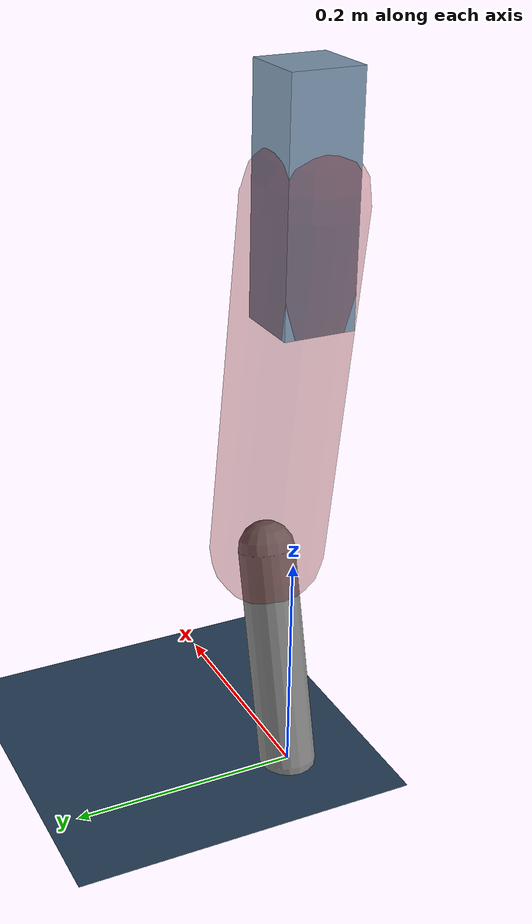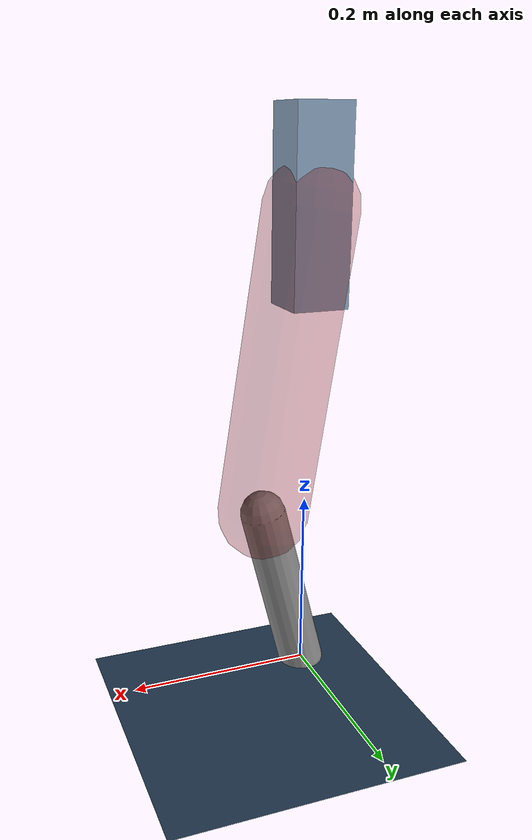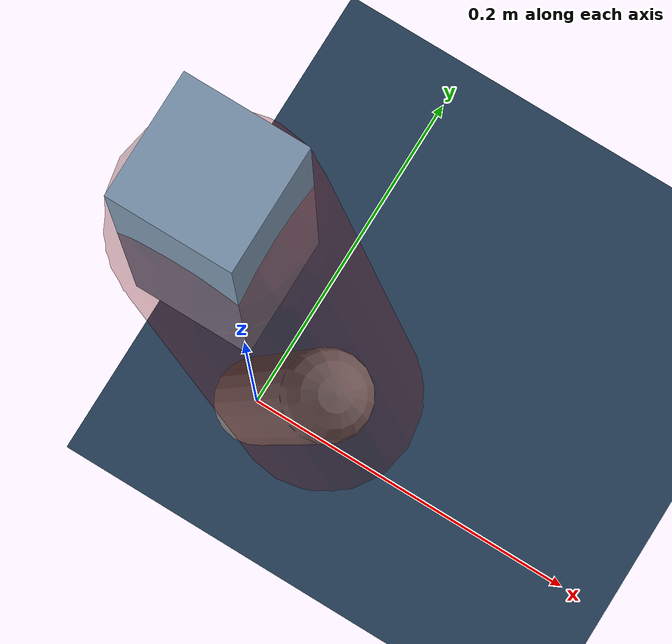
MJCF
<mujoco model="Hopper2D">
	<compiler inertiafromgeom="true" angle="radian" />
	<option timestep="0.001" integrator="implicit" cone="elliptic" solver="Newton" tolerance="1e-10" />

	<default>
		<geom contype="1" conaffinity="1" condim="3" friction="2 0.005 0.0001" solref="0.005 1" />
		<joint limited="true" damping="0.1" />
	</default>

	<asset>
		<texture name="skybox" type="skybox" builtin="gradient" rgb1=".4 .6 .8" rgb2="0 0 0" width="800" height="800" />
		<texture name="grid" type="2d" builtin="checker" rgb1=".1 .2 .3" rgb2=".2 .3 .4" width="300" height="300" mark="edge" markrgb=".2 .3 .4" />
		<material name="ground" texture="grid" texrepeat="1 1" texuniform="true" reflectance="0.1" />
		<material name="leg" rgba="0.5 0.6 0.7 1" />
	</asset>

	<worldbody>

		<geom name="floor" type="plane" size="5 5 0.25" material="ground" />

		<light directional="false" diffuse="0.8 0.8 0.8" specular="0.3 0.3 0.3" pos="0 0 2" dir="0 0 -1" />
		<light mode="targetbodycom" target="base" directional="false" diffuse="0.8 0.8 0.8" specular="0.3 0.3 0.3" pos="0 0 2" dir="0 0 -1" />

		<camera name="fixed" pos="0 -2 1" xyaxes="1 0 0 0 0 1" />
		<camera name="tracking" mode="trackcom" pos="0 -3 1" />

		<body name="root" pos="0 0 0.5163033493193825">
			<joint name="slide_x" type="slide" axis="1 0 0" range="-100 100" />
			<joint name="slide_z" type="slide" axis="0 0 1" range="0 10" />

			<body name="base" pos="0 0 0">
				<geom name="torso" type="box" size="0.03 0.03 0.1" mass="2.182" material="leg" />

				<body name="link1" pos="0 0 0" euler="0 1.4202203196661023 0">
					<joint type="hinge" axis="0 -1 0" pos="0 0 0" name="hinge1" limited="true" range="-3.14 3.14" stiffness="0" damping="0.1" />
					<geom name="thigh" type="capsule" fromto="0 0 0 0.32906292103357887 0 0" size="0.05" rgba="0.5 0 0 0.3" mass="1.068269886790663" />

					<body name="link2" pos="0.32906292103357887 0 0" euler="0 0.4035277563917828 0">
						<joint type="hinge" axis="0 -1 0" pos="0 0 0" name="hinge2" limited="true" range="-3.14 3.14" stiffness="0" damping="0.1" />
						<geom name="shank" type="capsule" fromto="0 0 0 0.19724042828580368 0 0" size="0.025" mass="0.3985923426286429" />

					</body>
				</body>
			</body>
		</body>
	</worldbody>

	<actuator>
		<motor name="torque1" joint="hinge1" ctrlrange="-63.81184597030911 63.81184597030911" ctrllimited="true" gear="1" />
		<motor name="torque2" joint="hinge2" ctrlrange="-86.31171024377232 86.31171024377232" ctrllimited="true" gear="1" />
	</actuator>
</mujoco>
